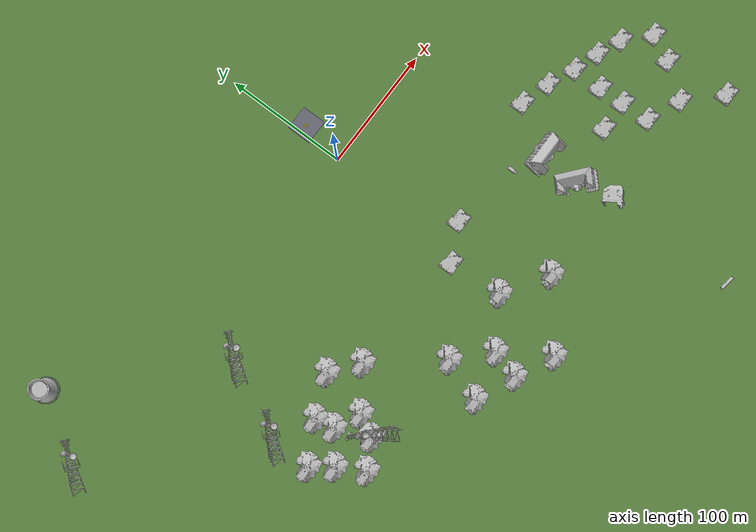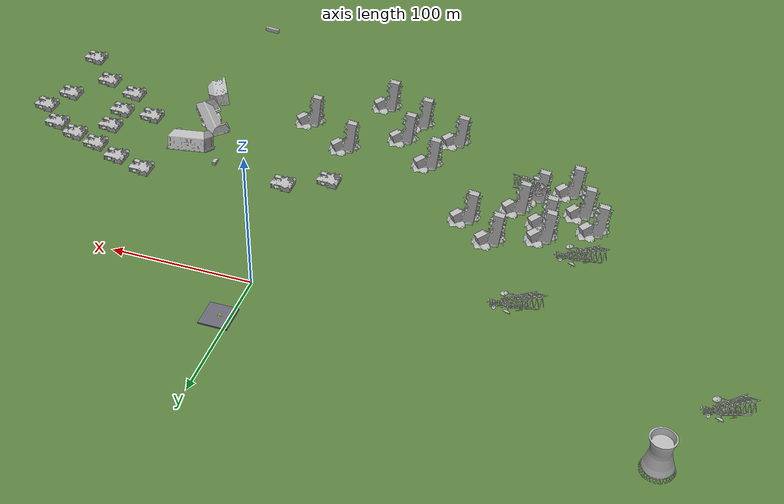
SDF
<sdf version="1.7">
 <world name="aura_disaster">
  <physics type="ode">
   <max_step_size>0.004</max_step_size>
   <real_time_factor>1</real_time_factor>
   <real_time_update_rate>250</real_time_update_rate>
  </physics>
  <scene>
   <ambient>0.6 0.6 0.6 1</ambient>
   <background>0.4 0.6 0.8 1</background>
   <shadows>0</shadows>
   <grid>0</grid>
   <origin_visual>0</origin_visual>
  </scene>
  <light name="sun" type="directional">
   <cast_shadows>0</cast_shadows>
   <pose>0 0 100 0 -0 0</pose>
   <diffuse>0.9 0.85 0.8 1</diffuse>
   <specular>0.2 0.2 0.2 1</specular>
   <direction>-0.3 0.4 -0.8</direction>
   <attenuation>
    <range>1000</range>
    <constant>0.9</constant>
    <linear>0.01</linear>
    <quadratic>0.001</quadratic>
   </attenuation>
   <spot><inner_angle>0</inner_angle><outer_angle>0</outer_angle><falloff>0</falloff></spot>
  </light>
  <model name="launch_pad">
   <static>1</static>
   <pose>7.38653 35.9449 0.214848 -0.003289 0 0</pose>
   <link name="pad_link">
    <collision name="collision"><geometry><box><size>20 20 1</size></box></geometry></collision>
    <visual name="visual">
     <geometry><box><size>20 20 1</size></box></geometry>
     <material><ambient>0.3 0.3 0.35 1</ambient><diffuse>0.4 0.4 0.45 1</diffuse></material>
    </visual>
   </link>
  </model>
  <model name="h_marker">
   <static>1</static>
   <pose>6.75495 36.0366 0.820557 0 -0 0</pose>
   <link name="link">
    <visual name="h_vis">
     <geometry><box><size>4 0.5 0.01</size></box></geometry>
     <material><ambient>0.9 0.9 0 1</ambient><diffuse>1 1 0 1</diffuse></material>
    </visual>
   </link>
  </model>
  <gravity>0 0 -9.8</gravity>
  <magnetic_field>6e-06 2.3e-05 -4.2e-05</magnetic_field>
  <atmosphere type="adiabatic"/>
  <audio><device>default</device></audio>
  <spherical_coordinates>
   <surface_model>EARTH_WGS84</surface_model>
   <latitude_deg>0</latitude_deg>
   <longitude_deg>0</longitude_deg>
   <elevation>0</elevation>
   <heading_deg>0</heading_deg>
  </spherical_coordinates>
  <model name="collapsed_house">
   <static>1</static>
   <link name="link">
    <collision name="collision">
     <geometry>
      <mesh><scale>1.5 1.5 1.5</scale><uri>model://collapsed_house/meshes/collapsed_house.dae</uri></mesh>
     </geometry>
    </collision>
    <visual name="visual">
     <geometry>
      <mesh><scale>1.5 1.5 1.5</scale><uri>model://collapsed_house/meshes/collapsed_house.dae</uri></mesh>
     </geometry>
    </visual>
   </link>
   <pose>167.671 -127.096 0 0 -0 0</pose>
  </model>
  <model name="collapsed_house_clone">
   <static>1</static>
   <link name="link">
    <collision name="collision">
     <geometry>
      <mesh><scale>1.5 1.5 1.5</scale><uri>model://collapsed_house/meshes/collapsed_house.dae</uri></mesh>
     </geometry>
    </collision>
    <visual name="visual">
     <geometry>
      <mesh><scale>1.5 1.5 1.5</scale><uri>model://collapsed_house/meshes/collapsed_house.dae</uri></mesh>
     </geometry>
    </visual>
   </link>
   <pose>168.534 -147.993 0 0 -0 0</pose>
  </model>
  <model name="collapsed_house_clone_0">
   <static>1</static>
   <link name="link">
    <collision name="collision">
     <geometry>
      <mesh><scale>1.5 1.5 1.5</scale><uri>model://collapsed_house/meshes/collapsed_house.dae</uri></mesh>
     </geometry>
    </collision>
    <visual name="visual">
     <geometry>
      <mesh><scale>1.5 1.5 1.5</scale><uri>model://collapsed_house/meshes/collapsed_house.dae</uri></mesh>
     </geometry>
    </visual>
   </link>
   <pose>169.713 -170.96 0 0 -0 0</pose>
  </model>
  <model name="collapsed_house_clone_3">
   <static>1</static>
   <link name="link">
    <collision name="collision">
     <geometry>
      <mesh><scale>1.5 1.5 1.5</scale><uri>model://collapsed_house/meshes/collapsed_house.dae</uri></mesh>
     </geometry>
    </collision>
    <visual name="visual">
     <geometry>
      <mesh><scale>1.5 1.5 1.5</scale><uri>model://collapsed_house/meshes/collapsed_house.dae</uri></mesh>
     </geometry>
    </visual>
   </link>
   <pose>196.689 -182.071 0 0 -0 0</pose>
  </model>
  <model name="collapsed_house_clone_6">
   <static>1</static>
   <link name="link">
    <collision name="collision">
     <geometry>
      <mesh><scale>1.5 1.5 1.5</scale><uri>model://collapsed_house/meshes/collapsed_house.dae</uri></mesh>
     </geometry>
    </collision>
    <visual name="visual">
     <geometry>
      <mesh><scale>1.5 1.5 1.5</scale><uri>model://collapsed_house/meshes/collapsed_house.dae</uri></mesh>
     </geometry>
    </visual>
   </link>
   <pose>216.738 -156.103 0 0 -0 0</pose>
  </model>
  <model name="collapsed_house_clone_9">
   <static>1</static>
   <link name="link">
    <collision name="collision">
     <geometry>
      <mesh><scale>1.5 1.5 1.5</scale><uri>model://collapsed_house/meshes/collapsed_house.dae</uri></mesh>
     </geometry>
    </collision>
    <visual name="visual">
     <geometry>
      <mesh><scale>1.5 1.5 1.5</scale><uri>model://collapsed_house/meshes/collapsed_house.dae</uri></mesh>
     </geometry>
    </visual>
   </link>
   <pose>222.374 -207.97 0 0 -0 0</pose>
  </model>
  <model name="collapsed_house_clone_12">
   <static>1</static>
   <link name="link">
    <collision name="collision">
     <geometry>
      <mesh><scale>1.5 1.5 1.5</scale><uri>model://collapsed_house/meshes/collapsed_house.dae</uri></mesh>
     </geometry>
    </collision>
    <visual name="visual">
     <geometry>
      <mesh><scale>1.5 1.5 1.5</scale><uri>model://collapsed_house/meshes/collapsed_house.dae</uri></mesh>
     </geometry>
    </visual>
   </link>
   <pose>143.62 -148.384 0 0 -0 0</pose>
  </model>
  <model name="collapsed_house_clone_15">
   <static>1</static>
   <link name="link">
    <collision name="collision">
     <geometry>
      <mesh><scale>1.5 1.5 1.5</scale><uri>model://collapsed_house/meshes/collapsed_house.dae</uri></mesh>
     </geometry>
    </collision>
    <visual name="visual">
     <geometry>
      <mesh><scale>1.5 1.5 1.5</scale><uri>model://collapsed_house/meshes/collapsed_house.dae</uri></mesh>
     </geometry>
    </visual>
   </link>
   <pose>-11 -117 0 0 -0 0</pose>
  </model>
  <model name="collapsed_house_clone_18">
   <static>1</static>
   <link name="link">
    <collision name="collision">
     <geometry>
      <mesh><scale>1.5 1.5 1.5</scale><uri>model://collapsed_house/meshes/collapsed_house.dae</uri></mesh>
     </geometry>
    </collision>
    <visual name="visual">
     <geometry>
      <mesh><scale>1.5 1.5 1.5</scale><uri>model://collapsed_house/meshes/collapsed_house.dae</uri></mesh>
     </geometry>
    </visual>
   </link>
   <pose>18.5486 -102.49 0 0 -0 0</pose>
  </model>
  <model name="collapsed_industrial">
   <static>1</static>
   <link name="link">
    <collision name="collision">
     <geometry><mesh><uri>model://collapsed_industrial/meshes/collapsed_industrial.dae</uri></mesh></geometry>
    </collision>
    <visual name="visual">
     <geometry><mesh><uri>model://collapsed_industrial/meshes/collapsed_industrial.dae</uri></mesh></geometry>
    </visual>
   </link>
   <pose>-21.5356 -221.453 0 0 -0 0</pose>
  </model>
  <model name="collapsed_industrial_clone">
   <static>1</static>
   <link name="link">
    <collision name="collision">
     <geometry><mesh><uri>model://collapsed_industrial/meshes/collapsed_industrial.dae</uri></mesh></geometry>
    </collision>
    <visual name="visual">
     <geometry><mesh><uri>model://collapsed_industrial/meshes/collapsed_industrial.dae</uri></mesh></geometry>
    </visual>
   </link>
   <pose>-52.0891 -206.658 0 0 -0 0</pose>
  </model>
  <model name="collapsed_industrial_clone_0">
   <static>1</static>
   <link name="link">
    <collision name="collision">
     <geometry><mesh><uri>model://collapsed_industrial/meshes/collapsed_industrial.dae</uri></mesh></geometry>
    </collision>
    <visual name="visual">
     <geometry><mesh><uri>model://collapsed_industrial/meshes/collapsed_industrial.dae</uri></mesh></geometry>
    </visual>
   </link>
   <pose>-83.7817 -193.232 0 0 -0 0</pose>
  </model>
  <model name="collapsed_industrial_clone_2">
   <static>1</static>
   <link name="link">
    <collision name="collision">
     <geometry><mesh><uri>model://collapsed_industrial/meshes/collapsed_industrial.dae</uri></mesh></geometry>
    </collision>
    <visual name="visual">
     <geometry><mesh><uri>model://collapsed_industrial/meshes/collapsed_industrial.dae</uri></mesh></geometry>
    </visual>
   </link>
   <pose>-71.8971 -160.014 0 0 -0 0</pose>
  </model>
  <model name="collapsed_industrial_clone_4">
   <static>1</static>
   <link name="link">
    <collision name="collision">
     <geometry><mesh><uri>model://collapsed_industrial/meshes/collapsed_industrial.dae</uri></mesh></geometry>
    </collision>
    <visual name="visual">
     <geometry><mesh><uri>model://collapsed_industrial/meshes/collapsed_industrial.dae</uri></mesh></geometry>
    </visual>
   </link>
   <pose>-45.9202 -184.25 0 0 -0 0</pose>
  </model>
  <model name="collapsed_industrial_clone_6">
   <static>1</static>
   <link name="link">
    <collision name="collision">
     <geometry><mesh><uri>model://collapsed_industrial/meshes/collapsed_industrial.dae</uri></mesh></geometry>
    </collision>
    <visual name="visual">
     <geometry><mesh><uri>model://collapsed_industrial/meshes/collapsed_industrial.dae</uri></mesh></geometry>
    </visual>
   </link>
   <pose>-8.51092 -159.956 0 0 -0 0</pose>
  </model>
  <model name="collapsed_industrial_clone_8">
   <static>1</static>
   <link name="link">
    <collision name="collision">
     <geometry><mesh><uri>model://collapsed_industrial/meshes/collapsed_industrial.dae</uri></mesh></geometry>
    </collision>
    <visual name="visual">
     <geometry><mesh><uri>model://collapsed_industrial/meshes/collapsed_industrial.dae</uri></mesh></geometry>
    </visual>
   </link>
   <pose>27 -183 0 0 -0 0</pose>
  </model>
  <model name="collapsed_industrial_clone_10">
   <static>1</static>
   <link name="link">
    <collision name="collision">
     <geometry><mesh><uri>model://collapsed_industrial/meshes/collapsed_industrial.dae</uri></mesh></geometry>
    </collision>
    <visual name="visual">
     <geometry><mesh><uri>model://collapsed_industrial/meshes/collapsed_industrial.dae</uri></mesh></geometry>
    </visual>
   </link>
   <pose>-175.812 -160.493 0 0 -0 0</pose>
  </model>
  <model name="collapsed_industrial_clone_11">
   <static>1</static>
   <link name="link">
    <collision name="collision">
     <geometry><mesh><uri>model://collapsed_industrial/meshes/collapsed_industrial.dae</uri></mesh></geometry>
    </collision>
    <visual name="visual">
     <geometry><mesh><uri>model://collapsed_industrial/meshes/collapsed_industrial.dae</uri></mesh></geometry>
    </visual>
   </link>
   <pose>-187.826 -139.74 0 0 -0 0</pose>
  </model>
  <model name="collapsed_industrial_clone_12">
   <static>1</static>
   <link name="link">
    <collision name="collision">
     <geometry><mesh><uri>model://collapsed_industrial/meshes/collapsed_industrial.dae</uri></mesh></geometry>
    </collision>
    <visual name="visual">
     <geometry><mesh><uri>model://collapsed_industrial/meshes/collapsed_industrial.dae</uri></mesh></geometry>
    </visual>
   </link>
   <pose>-199.845 -123.623 0 0 -0 0</pose>
  </model>
  <model name="collapsed_industrial_clone_13">
   <static>1</static>
   <link name="link">
    <collision name="collision">
     <geometry><mesh><uri>model://collapsed_industrial/meshes/collapsed_industrial.dae</uri></mesh></geometry>
    </collision>
    <visual name="visual">
     <geometry><mesh><uri>model://collapsed_industrial/meshes/collapsed_industrial.dae</uri></mesh></geometry>
    </visual>
   </link>
   <pose>-168 -106 0 0 -0 0</pose>
  </model>
  <model name="collapsed_industrial_clone_14">
   <static>1</static>
   <link name="link">
    <collision name="collision">
     <geometry><mesh><uri>model://collapsed_industrial/meshes/collapsed_industrial.dae</uri></mesh></geometry>
    </collision>
    <visual name="visual">
     <geometry><mesh><uri>model://collapsed_industrial/meshes/collapsed_industrial.dae</uri></mesh></geometry>
    </visual>
   </link>
   <pose>-135.443 -92 0 0 -0 0</pose>
  </model>
  <model name="collapsed_industrial_clone_15">
   <static>1</static>
   <link name="link">
    <collision name="collision">
     <geometry><mesh><uri>model://collapsed_industrial/meshes/collapsed_industrial.dae</uri></mesh></geometry>
    </collision>
    <visual name="visual">
     <geometry><mesh><uri>model://collapsed_industrial/meshes/collapsed_industrial.dae</uri></mesh></geometry>
    </visual>
   </link>
   <pose>-144.503 -131 0 0 -0 0</pose>
  </model>
  <model name="collapsed_industrial_clone_16">
   <static>1</static>
   <link name="link">
    <collision name="collision">
     <geometry><mesh><uri>model://collapsed_industrial/meshes/collapsed_industrial.dae</uri></mesh></geometry>
    </collision>
    <visual name="visual">
     <geometry><mesh><uri>model://collapsed_industrial/meshes/collapsed_industrial.dae</uri></mesh></geometry>
    </visual>
   </link>
   <pose>-165.134 -121.428 0 0 -0 0</pose>
  </model>
  <model name="collapsed_industrial_clone_17">
   <static>1</static>
   <link name="link">
    <collision name="collision">
     <geometry><mesh><uri>model://collapsed_industrial/meshes/collapsed_industrial.dae</uri></mesh></geometry>
    </collision>
    <visual name="visual">
     <geometry><mesh><uri>model://collapsed_industrial/meshes/collapsed_industrial.dae</uri></mesh></geometry>
    </visual>
   </link>
   <pose>-154 -148 0 0 -0 0</pose>
  </model>
  <model name="collapsed_industrial_clone_18">
   <static>1</static>
   <link name="link">
    <collision name="collision">
     <geometry><mesh><uri>model://collapsed_industrial/meshes/collapsed_industrial.dae</uri></mesh></geometry>
    </collision>
    <visual name="visual">
     <geometry><mesh><uri>model://collapsed_industrial/meshes/collapsed_industrial.dae</uri></mesh></geometry>
    </visual>
   </link>
   <pose>-113.448 -109 0 0 -0 0</pose>
  </model>
  <model name="radio_tower">
   <static>1</static>
   <link name="link">
    <collision name="collision">
     <geometry><mesh><uri>model://radio_tower/meshes/radio_tower.dae</uri></mesh></geometry>
    </collision>
    <visual name="visual">
     <geometry><mesh><uri>model://radio_tower/meshes/radio_tower.dae</uri></mesh></geometry>
    </visual>
   </link>
   <pose>-138.175 -162.68 0 -1.02342 -0.347034 0.508977</pose>
  </model>
  <model name="radio_tower_clone">
   <static>1</static>
   <link name="link">
    <collision name="collision">
     <geometry><mesh><uri>model://radio_tower/meshes/radio_tower.dae</uri></mesh></geometry>
    </collision>
    <visual name="visual">
     <geometry><mesh><uri>model://radio_tower/meshes/radio_tower.dae</uri></mesh></geometry>
    </visual>
   </link>
   <pose>-210.526 -103.757 0 -1.18199 0.285021 -0.601513</pose>
  </model>
  <model name="radio_tower_clone_0">
   <static>1</static>
   <link name="link">
    <collision name="collision">
     <geometry><mesh><uri>model://radio_tower/meshes/radio_tower.dae</uri></mesh></geometry>
    </collision>
    <visual name="visual">
     <geometry><mesh><uri>model://radio_tower/meshes/radio_tower.dae</uri></mesh></geometry>
    </visual>
   </link>
   <pose>-181.191 -45.759 0 -1.18199 0.285021 -0.601513</pose>
  </model>
  <model name="radio_tower_clone_1">
   <static>1</static>
   <link name="link">
    <collision name="collision">
     <geometry><mesh><uri>model://radio_tower/meshes/radio_tower.dae</uri></mesh></geometry>
    </collision>
    <visual name="visual">
     <geometry><mesh><uri>model://radio_tower/meshes/radio_tower.dae</uri></mesh></geometry>
    </visual>
   </link>
   <pose>-317.979 1.3309 0 -1.18199 0.285021 -0.601513</pose>
  </model>
  <model name="collapsed_house_clone_13_clone">
   <static>1</static>
   <link name="link">
    <collision name="collision">
     <geometry>
      <mesh><scale>1.5 1.5 1.5</scale><uri>model://collapsed_house/meshes/collapsed_house.dae</uri></mesh>
     </geometry>
    </collision>
    <visual name="visual">
     <geometry>
      <mesh><scale>1.5 1.5 1.5</scale><uri>model://collapsed_house/meshes/collapsed_house.dae</uri></mesh>
     </geometry>
    </visual>
   </link>
   <pose>145.789 -93.4623 0 0 -0 0</pose>
  </model>
  <model name="collapsed_house_clone_13_clone_0">
   <static>1</static>
   <link name="link">
    <collision name="collision">
     <geometry>
      <mesh><scale>1.5 1.5 1.5</scale><uri>model://collapsed_house/meshes/collapsed_house.dae</uri></mesh>
     </geometry>
    </collision>
    <visual name="visual">
     <geometry>
      <mesh><scale>1.5 1.5 1.5</scale><uri>model://collapsed_house/meshes/collapsed_house.dae</uri></mesh>
     </geometry>
    </visual>
   </link>
   <pose>167.467 -102.843 0 0 -0 0</pose>
  </model>
  <model name="collapsed_house_clone_13_clone_1">
   <static>1</static>
   <link name="link">
    <collision name="collision">
     <geometry>
      <mesh><scale>1.5 1.5 1.5</scale><uri>model://collapsed_house/meshes/collapsed_house.dae</uri></mesh>
     </geometry>
    </collision>
    <visual name="visual">
     <geometry>
      <mesh><scale>1.5 1.5 1.5</scale><uri>model://collapsed_house/meshes/collapsed_house.dae</uri></mesh>
     </geometry>
    </visual>
   </link>
   <pose>188.132 -109.567 0 0 -0 0</pose>
  </model>
  <model name="collapsed_house_clone_13_clone_2">
   <static>1</static>
   <link name="link">
    <collision name="collision">
     <geometry>
      <mesh><scale>1.5 1.5 1.5</scale><uri>model://collapsed_house/meshes/collapsed_house.dae</uri></mesh>
     </geometry>
    </collision>
    <visual name="visual">
     <geometry>
      <mesh><scale>1.5 1.5 1.5</scale><uri>model://collapsed_house/meshes/collapsed_house.dae</uri></mesh>
     </geometry>
    </visual>
   </link>
   <pose>207.71 -117.568 0 0 -0 0</pose>
  </model>
  <model name="collapsed_house_clone_13_clone_3">
   <static>1</static>
   <link name="link">
    <collision name="collision">
     <geometry>
      <mesh><scale>1.5 1.5 1.5</scale><uri>model://collapsed_house/meshes/collapsed_house.dae</uri></mesh>
     </geometry>
    </collision>
    <visual name="visual">
     <geometry>
      <mesh><scale>1.5 1.5 1.5</scale><uri>model://collapsed_house/meshes/collapsed_house.dae</uri></mesh>
     </geometry>
    </visual>
   </link>
   <pose>226.744 -135.677 0 0 -0 0</pose>
  </model>
  <model name="collapsed_house_clone_13_clone_4">
   <static>1</static>
   <link name="link">
    <collision name="collision">
     <geometry>
      <mesh><scale>1.5 1.5 1.5</scale><uri>model://collapsed_house/meshes/collapsed_house.dae</uri></mesh>
     </geometry>
    </collision>
    <visual name="visual">
     <geometry>
      <mesh><scale>1.5 1.5 1.5</scale><uri>model://collapsed_house/meshes/collapsed_house.dae</uri></mesh>
     </geometry>
    </visual>
   </link>
   <pose>121.901 -86.3751 0 0 -0 0</pose>
  </model>
  <model name="school">
   <static>1</static>
   <link name="link">
    <collision name="collision">
     <geometry><mesh><uri>model://school/meshes/school.dae</uri></mesh></geometry>
    </collision>
    <visual name="visual"><geometry><mesh><uri>model://school/meshes/school.dae</uri></mesh></geometry></visual>
   </link>
   <pose>99.5848 -120.71 0 0.419169 0.129624 -0</pose>
  </model>
  <model name="school_clone">
   <static>1</static>
   <link name="link">
    <collision name="collision">
     <geometry><mesh><uri>model://school/meshes/school.dae</uri></mesh></geometry>
    </collision>
    <visual name="visual"><geometry><mesh><uri>model://school/meshes/school.dae</uri></mesh></geometry></visual>
   </link>
   <pose>97.8289 -189.726 0 -1.87281 1.23756 -1.35221</pose>
  </model>
  <model name="school_clone_0">
   <static>1</static>
   <link name="link">
    <collision name="collision">
     <geometry><mesh><uri>model://school/meshes/school.dae</uri></mesh></geometry>
    </collision>
    <visual name="visual"><geometry><mesh><uri>model://school/meshes/school.dae</uri></mesh></geometry></visual>
   </link>
   <pose>98.1873 -156.288 0 -0.164627 -0.447717 -0.762238</pose>
  </model>
  <model name="ground_plane">
   <static>true</static>
   <link name="link">
    <collision name="collision">
     <geometry><plane><normal>0 0 1</normal><size>800 800</size></plane></geometry>
    </collision>
    <visual name="visual">
     <geometry><plane><normal>0 0 1</normal><size>800 800</size></plane></geometry>
     <material><ambient>0.25 0.4 0.2 1</ambient><diffuse>0.35 0.5 0.25 1</diffuse></material>
    </visual>
   </link>
  </model>
  <model name="reactor">
   <static>1</static>
   <link name="link">
    <collision name="collision">
     <geometry><mesh><uri>model://reactor/meshes/reactor.dae</uri></mesh></geometry>
    </collision>
    <visual name="visual"><geometry><mesh><uri>model://reactor/meshes/reactor.dae</uri></mesh></geometry></visual>
   </link>
   <pose>-272.888 68.4343 0 0 -0 0</pose>
  </model>
  <model name="bus">
   <static>1</static>
   <link name="link">
    <collision name="collision">
     <geometry><mesh><scale>0.01 0.01 0.01</scale><uri>model://bus/meshes/bus.obj</uri></mesh></geometry>
    </collision>
    <visual name="visual">
     <geometry><mesh><scale>0.01 0.01 0.01</scale><uri>model://bus/meshes/bus.obj</uri></mesh></geometry>
    </visual>
   </link>
   <pose>103.001 -293.857 1.45142 0.005894 0.16386 1.42261</pose>
  </model>
  <model name="ambulance">
   <static>1</static>
   <link name="link">
    <collision name="collision">
     <geometry>
      <mesh><scale>0.0254 0.0254 0.0254</scale><uri>model://ambulance/meshes/ambulance.obj</uri></mesh>
     </geometry>
    </collision>
    <visual name="visual">
     <geometry>
      <mesh><scale>0.0254 0.0254 0.0254</scale><uri>model://ambulance/meshes/ambulance.obj</uri></mesh>
     </geometry>
    </visual>
   </link>
   <pose>74.6027 -111.875 0 0 -0 0</pose>
  </model>
  <model name="h_marker_clone">
   <static>1</static>
   <pose>6.69354 36.0815 0.820557 0 0 -1.5688</pose>
   <link name="link">
    <visual name="h_vis">
     <geometry><box><size>4 0.5 0.01</size></box></geometry>
     <material><ambient>0.9 0.9 0 1</ambient><diffuse>1 1 0 1</diffuse></material>
    </visual>
   </link>
  </model>
 </world>
</sdf>
